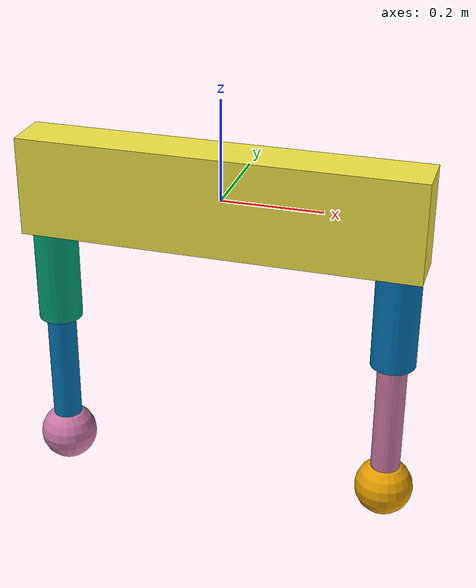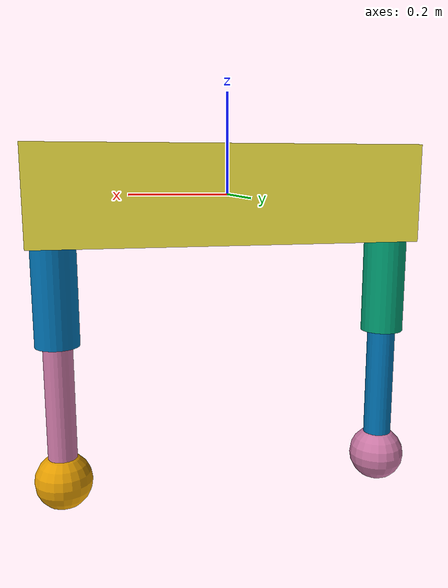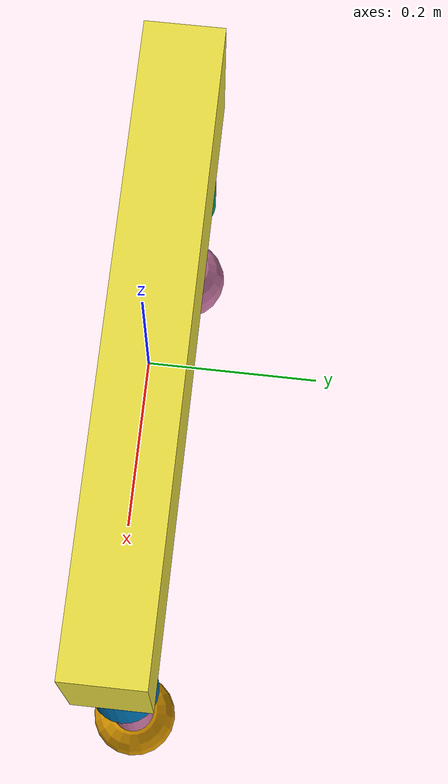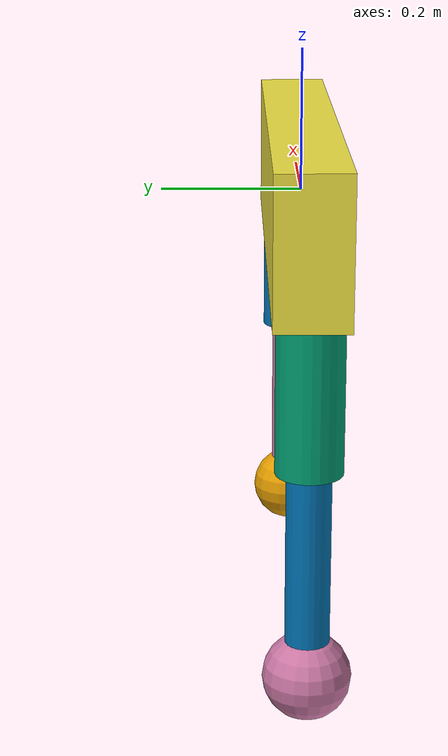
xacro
<?xml version="1.0" encoding="utf-8"  ?>
<robot name="cheetah" xmlns:xacro="http://www.ros.org/wiki/xacro">

    <xacro:include filename="package://jumping_leg/models/commons.xacro"/>
    <xacro:include filename="$(find jumping_leg)/models/leg_simple_2d.xacro"/>

	<xacro:arg name="front_legs_pos" default="0.35" />
	<xacro:arg name="back_legs_pos" default="-0.35" />

	<xacro:arg name="thigh_width" default="0.09" />
	<xacro:arg name="thigh_height" default="0.3" />
	<xacro:arg name="thigh_mass" default="2" />
	<xacro:arg name="thigh_color" default="1 0.5088 0.0468 1" />

	<xacro:arg name="knee_y_offset" default="-0.09" /> <!-- Wide enough to prevent self collisions (should be more than shin_width/2 + thigh_width/2) -->

	<xacro:arg name="shin_width" default="0.06" />
	<xacro:arg name="shin_height" default="0.35" />
	<xacro:arg name="shin_mass" default="1" />
	<xacro:arg name="shin_color" default="1 0.5088 0.0468 1" />

	<xacro:arg name="body_width" default="0.1" />
	<xacro:arg name="body_length" default="0.8" />
	<xacro:arg name="body_height" default="0.20" />
	<xacro:arg name="body_mass" default="12" />

	<xacro:arg name="hip_friction" default="0.1" />
	<xacro:arg name="knee_friction" default="0.1" />

	<xacro:property name="front_legs_pos"  default="$(arg front_legs_pos)" />
	<xacro:property name="back_legs_pos"  default="$(arg back_legs_pos)" />

	<xacro:property name="thigh_width"  default="$(arg thigh_width)" />
	<xacro:property name="thigh_height" default="$(arg thigh_height)" />
	<xacro:property name="thigh_mass"   default="$(arg thigh_mass)" />
	<xacro:property name="thigh_color"  default="$(arg thigh_color)" />

	<xacro:property name="knee_y_offset"  default="$(arg knee_y_offset)" />

	<xacro:property name="shin_width"  default="$(arg shin_width)" />
	<xacro:property name="shin_height" default="$(arg shin_height)" />
	<xacro:property name="shin_mass"   default="$(arg shin_mass)" />
	<xacro:property name="shin_color"  default="$(arg shin_color)" />

	<xacro:property name="body_width" default="$(arg body_width)" />
	<xacro:property name="body_length" default="$(arg body_length)" />
	<xacro:property name="body_height" default="$(arg body_height)" />
	<xacro:property name="body_mass" default="$(arg body_mass)" />

	<xacro:property name="knee_friction" default="$(arg knee_friction)" />
	<xacro:property name="hip_friction" default="$(arg hip_friction)" />

    <xacro:property name="hip_y_min_pos" default="-2.4" />
    <xacro:property name="hip_y_max_pos" default="2.4" />
    <xacro:property name="knee_min_pos" default="-2.4" />
    <xacro:property name="knee_max_pos" default="2.4" />

    <xacro:macro name="default_contact_params" params="">
        <contact>
            <lateral_friction value="1"/>
            <rolling_friction value="0.00001"/>
        </contact>
    </xacro:macro>

    <link name="world"/>
    <link name="mid"/>
    <link name="mid2"/>

    <link name="body_link">
		<visual name = "body_link_v">
			<origin xyz="0 0 0" rpy="0 0 0"/>
			<geometry>
				<box size="${body_length} ${body_width} ${body_height}"/>
			</geometry>
	   	</visual>
  		<collision name = "body_link_c">
			<origin xyz="0 0 0" rpy="0 0 0"/>
			<geometry>
				<box size="${body_length} ${body_width} ${body_height}"/>
			</geometry>
	   	</collision>
		<xacro:box_inertial mass="${body_mass}"
                            x="${body_width}" y="${body_length}" z="${body_height}"
                            pose_xyz = "0 0 0"
                            pose_rpy = "0 0 0"/>
        <xacro:default_contact_params />
	</link>

    <joint name="torso_x_slider" type="prismatic">
        <origin xyz="0 0 0" rpy="0 0 0" />
        <axis xyz="1 0 0" rpy="0 0 0" />
        <parent link="world"/>
        <child link="mid"/>
        <limit effort="10000" lower="-1" upper="1000" velocity="10000"/>
    </joint>
    <joint name="torso_z_slider" type="prismatic">
        <origin xyz="0 0 0" rpy="0 0 0" />
        <axis xyz="0 0 1" rpy="0 0 0" />
        <parent link="mid"/>
        <child link="mid2"/>
        <limit effort="10000" lower="-10" upper="1000" velocity="10000"/>
    </joint>
    <joint name="torso_pitch_joint" type="continuous">
        <origin xyz="0.0 0.0 0" rpy="0 0 0" /> <!-- joint pose in the parent frame-->
        <axis xyz="0 1 0" rpy="0 0 0" />
        <parent link="mid2"/>
        <child link="body_link"/>
    </joint>

    <xacro:leg_simple_2d   hip_x_offset = "${front_legs_pos}"
                        hip_y_offset = "0"
                        hip_z_offset = "0"
                        thigh_width  = "${thigh_width}"
                        thigh_height = "${thigh_height}"
                        thigh_mass = "${thigh_mass}"
                        thigh_color = "${thigh_color}"
                        knee_y_offset = "0"
                        shin_width = "${shin_width}"
                        shin_height = "${shin_height}"
                        shin_mass = "${shin_mass}"
                        shin_color = "${shin_color}"
                        hip_friction = "${hip_friction}"
                        knee_friction = "${knee_friction}"
                        parent_link = "body_link"
                        leg_name = "front"
                        hip_y_min_pos = "${hip_y_min_pos}"
                        hip_y_max_pos = "${hip_y_max_pos}"
                        knee_min_pos = "${knee_min_pos}"
                        knee_max_pos = "${knee_max_pos}"
                        />

    <xacro:leg_simple_2d   hip_x_offset = "${back_legs_pos}"
                        hip_y_offset = "0"
                        hip_z_offset = "0"
                        thigh_width  = "${thigh_width}"
                        thigh_height = "${thigh_height}"
                        thigh_mass = "${thigh_mass}"
                        thigh_color = "${thigh_color}"
                        knee_y_offset = "0"
                        shin_width = "${shin_width}"
                        shin_height = "${shin_height}"
                        shin_mass = "${shin_mass}"
                        shin_color = "${shin_color}"
                        hip_friction = "${hip_friction}"
                        knee_friction = "${knee_friction}"
                        parent_link = "body_link"
                        leg_name = "back"
                        hip_y_min_pos = "${hip_y_min_pos}"
                        hip_y_max_pos = "${hip_y_max_pos}"
                        knee_min_pos = "${knee_min_pos}"
                        knee_max_pos = "${knee_max_pos}"
                        />

</robot>

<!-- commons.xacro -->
<robot xmlns:xacro="http://www.ros.org/wiki/xacro">

	<xacro:macro name="box_inertial" params="mass x y z pose_xyz pose_rpy">
		<inertial>
			<origin xyz="${pose_xyz}" rpy="${pose_rpy}"/>
			<mass value="${mass}" />
			<inertia 	ixx="${0.083 * mass * (y*y + z*z)}" ixy="0.0" ixz="0.0"
						iyy="${0.083 * mass * (x*x + z*z)}" iyz="0.0"
						izz="${0.083 * mass * (x*x + y*y)}"/>
		</inertial>
	</xacro:macro>

    <xacro:macro name="small_inertial" params="">
		<xacro:box_inertial mass="0.0001"
                            x="0.001" y="0.001" z="0.001"
                            pose_xyz = "0 0 0"
                            pose_rpy = "0 0 0"/>
    </xacro:macro>

    <xacro:macro name="cylinder_z_inertial" params="mass height radius pose_xyz pose_rpy">
		<inertial>
			<origin xyz="${pose_xyz}" rpy="${pose_rpy}"/>
			<mass value="${mass}" />
            <inertia    ixx="${1/12.0 * mass * (3*radius*radius + height*height)}" ixy="0.0"  ixz="0.0"
                        iyy="${1/12.0 * mass * (3*radius*radius + height*height)}" iyz="0.0"
                        izz="${1/12.0 * mass * radius*radius}" />
		</inertial>
    </xacro:macro>

</robot>

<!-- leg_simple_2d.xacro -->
<robot xmlns:xacro="http://www.ros.org/wiki/xacro">

    <xacro:macro name="leg_contact_params" params="">
        <contact>
            <lateral_friction value="1"/>
            <rolling_friction value="0.00001"/>
        </contact>
    </xacro:macro>

	<xacro:macro name="leg_simple_2d" params="hip_x_offset
											hip_y_offset
											hip_z_offset
											thigh_width
											thigh_height
											thigh_mass
											thigh_color
											knee_y_offset
											shin_width
											shin_height
											shin_mass
											shin_color
											hip_friction
											knee_friction
											parent_link
											leg_name
											hip_y_min_pos:=-2.4
											hip_y_max_pos:=2.4
											knee_min_pos:=-2.4
											knee_max_pos:=2.4">

			<link name="thigh_link_${leg_name}">
				<visual name = "thigh_link_v_${leg_name}">
					<origin xyz="0 0 -${thigh_height/2}" rpy="0 0 0"/>
					<geometry>
						<cylinder length="${thigh_height}" radius="${thigh_width/2}" />
					</geometry>
				</visual>
				<collision name = "thigh_link_c_${leg_name}">
					<origin xyz="0 0 -${thigh_height/2}" rpy="0 0 0"/>
					<geometry>
						<cylinder length="${thigh_height}" radius="${thigh_width/2}" />
					</geometry>
				</collision>
				<xacro:small_inertial />
		        <xacro:leg_contact_params />
			</link>
			<link name="thigh_link_com_${leg_name}">
				<xacro:cylinder_z_inertial mass="${thigh_mass}" height="${thigh_height}" radius="${thigh_width/2}"
											pose_xyz="0 0 0" pose_rpy="0 0 0"/>
			</link>

			<gazebo reference="thigh_link_${leg_name}">
				<visual name="thigh_link_v_${leg_name}">
					<material>
						<ambient>$(arg thigh_color)</ambient>
						<diffuse>$(arg thigh_color)</diffuse>
					</material>
				</visual>
				<contact>
					<lateral_friction value="0.1"/>
					<rolling_friction value="0.01"/>
					<restitution value="0.05"/>
				</contact>
			</gazebo>

			<link name="shin_link_${leg_name}">
				<!-- shin_height is the knee to foot tip distance, so the actual shin lenght is determined accordingly-->
				<visual name = "shin_link_v_${leg_name}">
					<origin xyz="0 0 -${(shin_height-shin_width)/2}" rpy="0 0 0"/>
					<geometry>
						<cylinder length="${shin_height-shin_width}" radius="${shin_width/2}" />
					</geometry>
				</visual>
				<collision name = "shin_link_c_${leg_name}">
					<origin xyz="0 0 -${(shin_height-shin_width)/2}" rpy="0 0 0"/>
					<geometry>
						<cylinder length="${shin_height-shin_width}" radius="${shin_width/2}" />
					</geometry>
				</collision>
				<xacro:small_inertial />
		        <xacro:leg_contact_params />
			</link>
			<link name="shin_link_com_${leg_name}">
				<xacro:cylinder_z_inertial mass="${shin_mass}" height="${shin_height}" radius="${shin_width/2}"
											pose_xyz="0 0 -${shin_height/2}" pose_rpy="0 0 0"/>
			</link>
			<gazebo reference="shin_link_${leg_name}">
				<visual name="shin_link_v_${leg_name}">
					<material>
						<ambient>$(arg shin_color)</ambient>
						<diffuse>$(arg shin_color)</diffuse>
					</material>
				</visual>
			</gazebo>

			<link name="foot_center_link_${leg_name}">
				<visual>
					<origin xyz="0 0 0" rpy="0 0 0"/>
					<geometry>
						<sphere radius="${shin_width}" />
					</geometry>
				</visual>
				<collision>
					<origin xyz="0 0 0" rpy="0 0 0"/>
					<geometry>
						<sphere radius="${shin_width}" />
					</geometry>
				</collision>
				<xacro:small_inertial />
				<contact>
					<lateral_friction value="0.9"/>
					<rolling_friction value="0.01"/>
					<restitution value="0.05"/>
				</contact>
			</link>

			<link name="foot_link_${leg_name}">
				<xacro:small_inertial />
			</link>

			<joint name="hip_joint_y_${leg_name}" type="revolute">
				<parent link="${parent_link}"/>
				<child link="thigh_link_${leg_name}"/>
				<origin xyz="${hip_x_offset} ${hip_y_offset} ${hip_z_offset}" rpy="0 0 0"/>
				<dynamics damping="0.0" friction="${hip_friction}"/>
				<limit lower="${hip_y_min_pos}" upper="${hip_y_max_pos}" effort="112" velocity="20"/>
				<axis xyz="0 1 0"/>
			</joint>

			<joint name="knee_joint_${leg_name}" type="revolute">
				<parent link="thigh_link_${leg_name}"/>
				<child link="shin_link_${leg_name}"/>
				<origin xyz="0 ${knee_y_offset} -${thigh_height}" rpy="0 0 0"/>
				<dynamics damping="0.0" friction="${knee_friction}"/>
				<limit lower="${knee_min_pos}" upper="${knee_max_pos}" effort="112" velocity="20"/>
				<axis xyz="0 -1 0"/>
			</joint>

			<joint name="thigh_link_com_${leg_name}" type="fixed">
				<parent link="thigh_link_${leg_name}"/>
				<child link="thigh_link_com_${leg_name}"/>
				<origin xyz="0 0 -${thigh_height/2}" rpy="0 0 0"/>
			</joint>
			<joint name="shin_link_com_${leg_name}" type="fixed">
				<parent link="shin_link_${leg_name}"/>
				<child link="shin_link_com_${leg_name}"/>
				<origin xyz="0 0 -${shin_height/2}" rpy="0 0 0"/>
			</joint>
			<joint name="foot_center_joint_${leg_name}" type="fixed">
				<parent link="shin_link_${leg_name}"/>
				<child link="foot_center_link_${leg_name}"/>
				<origin xyz="0 0 -${shin_height-shin_width}" rpy="0 0 0"/>
			</joint>

			<joint name="foot_joint_${leg_name}" type="fixed">
				<parent link="shin_link_${leg_name}"/>
				<child link="foot_link_${leg_name}"/>
				<origin xyz="0 0 -${shin_height}" rpy="0 0 0"/>
			</joint>
    </xacro:macro>

</robot>
